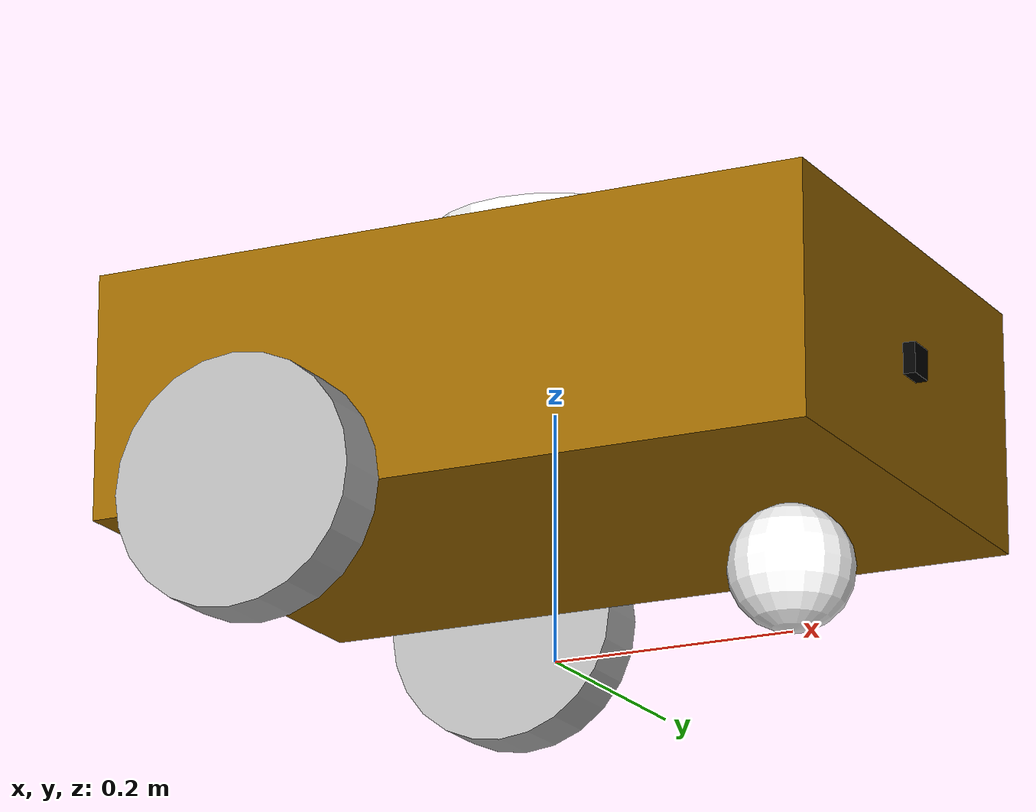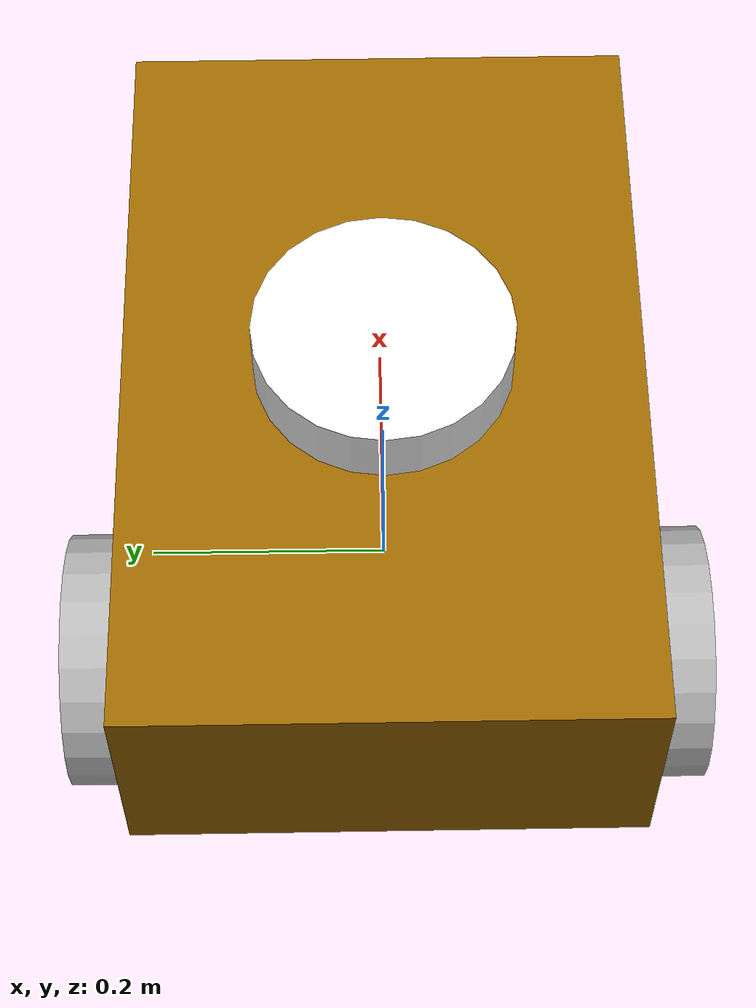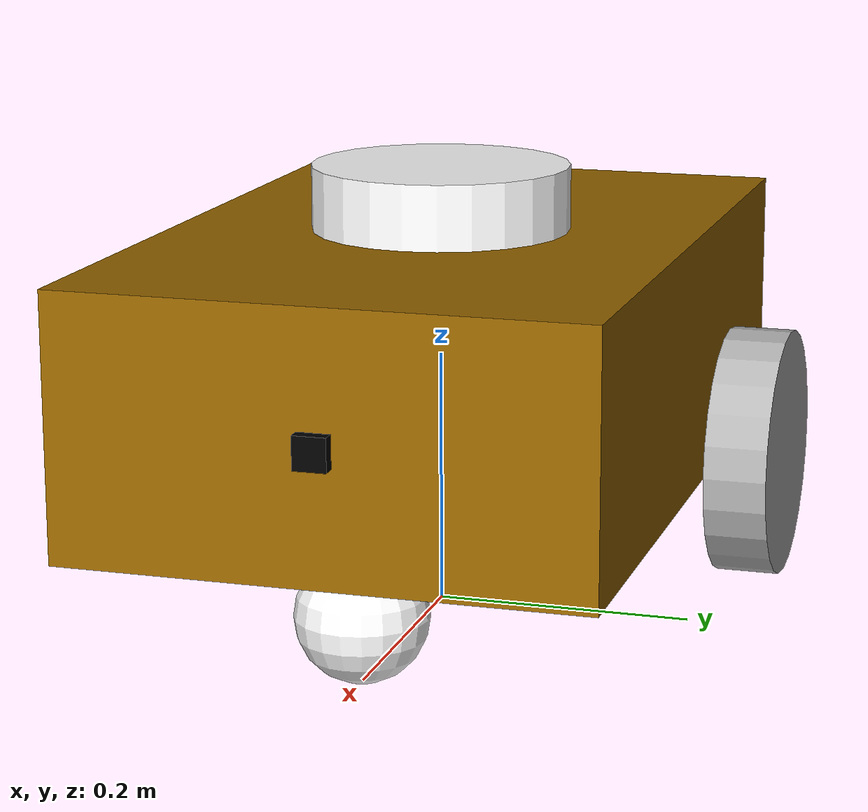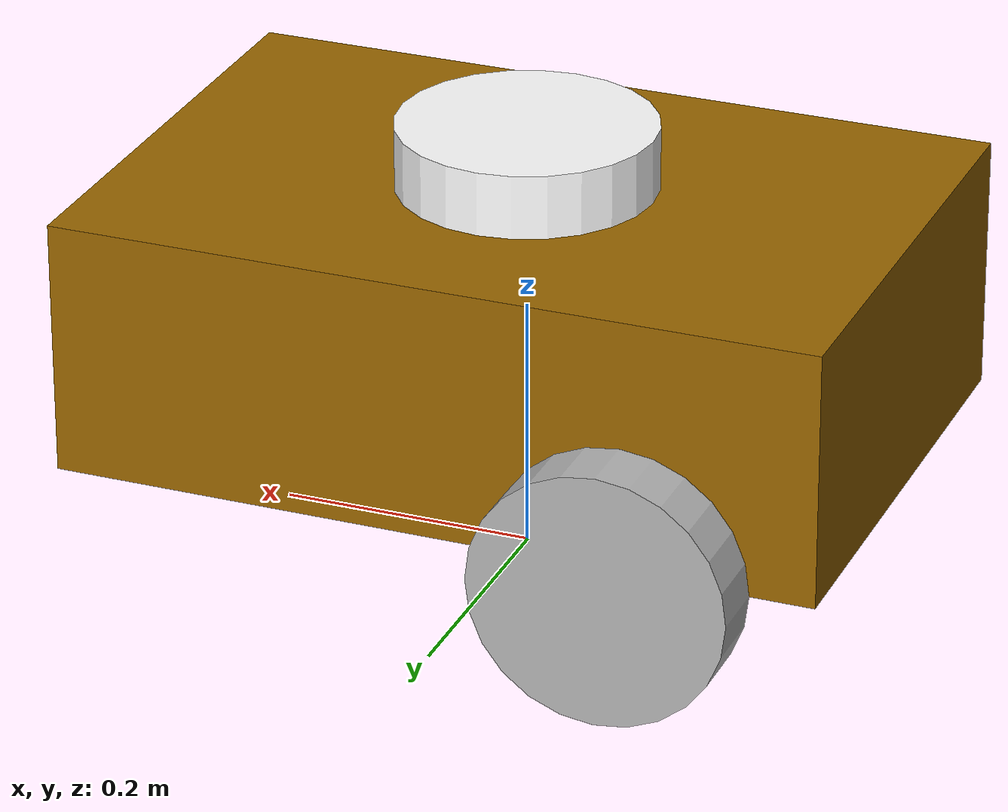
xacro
<?xml version="1.0"?>
<robot xmlns:xacro="http://www.ros.org/wiki/xacro">
<xacro:property name="width" value = "0.4"/>
<xacro:property name="length" value = "0.6"/>
<xacro:property name="height" value = "0.2"/>
<xacro:property name="wheel_radius" value = "0.1"/>
<xacro:property name="wheel_len" value = "0.05"/>
<xacro:property name = "caster" value = "0.05"/>

    <material name="orange">
        <color rgba="0.6 0.4 0 1"/>
    </material>

    <material name = "gray">
        <color rgba = "0.7 0.7 0.7 1"/>
    </material>

    <material name = "white">
        <color rgba="1 1 1 1"/>
    </material>

    <material name = "black">
        <color rgba = "0 0 0 1"/>
    </material>

    <link name = "base_link">
        <visual>
            <geometry>
                <box size = "${length} ${width} ${height}" />
            </geometry>
            <origin xyz = "0 0 ${2*wheel_radius}" rpy = "0 0 0"/>
            <material name= "orange"/>
        </visual>
        <collision>
            <geometry>
                <box size = "${length} ${width} ${height}" />
            </geometry>
            <origin xyz="0 0 ${2*wheel_radius}"/>
        </collision>
        <inertial>
            <mass value="5"/>
            <origin xyz="0 0 ${wheel_radius + height/2}" rpy = "0 0 0"/>
            <inertia ixx="0.083" ixy="0" ixz="0" iyy="0.11" iyz="0" izz="0.13"/>
        </inertial>
    </link>

    <link name = "left_wheel">
        <visual>
            <geometry>
                <cylinder radius = "${wheel_radius}" length = "${wheel_len}"/>
            </geometry>
            <origin xyz = "0 0 0" rpy = "1.57 0 0"/>
            <material name = "gray"/>
        </visual>
        <collision>
            <geometry>
                <cylinder radius = "${wheel_radius}" length = "${wheel_len}"/>
            </geometry>
            <origin xyz = "0 0 0" rpy = "1.57 0 0"/>
        </collision>
        <inertial>
            <mass value="0.5"/>
            <origin xyz="0 0 0" rpy = "0 0 0"/>
            <inertia ixx="0.0014" ixy="0" ixz="0" iyy="0.0014" iyz="0" izz="0.0025"/>
        </inertial>
    </link>
    <joint name = "left_wheel_joint" type = "continuous">
        <parent link = "base_link"/>
        <child link = "left_wheel"/>
        <origin xyz="-${length/4} ${width/2 + wheel_len/2} ${wheel_radius}"/>
        <axis xyz = "0 1 0"/>
    </joint>

    <link name = "right_wheel">
        <visual>
            <geometry>
                <cylinder radius = "${wheel_radius}" length = "${wheel_len}"/>
            </geometry>
            <origin xyz = "0 0 0" rpy = "1.57 0 0"/>
            <material name = "gray"/>
        </visual>
        <collision>
            <geometry>
                <cylinder radius = "${wheel_radius}" length = "${wheel_len}"/>
            </geometry>
            <origin xyz = "0 0 0" rpy = "1.57 0 0"/>
        </collision>
        <inertial>
            <mass value="0.5"/>
            <origin xyz="0 0 0" rpy = "0 0 0"/>
            <inertia ixx="0.0014" ixy="0" ixz="0" iyy="0.0014" iyz="0" izz="0.0025"/>
        </inertial>
    </link>
    <joint name = "right_wheel_joint" type = "continuous">
        <parent link = "base_link"/>
        <child link = "right_wheel"/>
        <origin xyz = "-${length/4} -${width/2 + wheel_len/2} ${wheel_radius}"/>
        <axis xyz = "0 1 0"/>
    </joint>

    <link name = "caster_wheel">
        <visual>
            <geometry>
                <sphere radius = "${caster}"/>
            </geometry>
            <origin xyz = "0 0 0" rpy = "0 0 0"/>
            <material name = "white"/>
        </visual>
        <collision>
            <geometry>
                <sphere radius = "${caster}"/>
            </geometry>
            <origin xyz = "0 0 0" rpy = "0 0 0"/>
        </collision>
        <inertial>
            <mass value="0.2"/>
            <origin xyz="0 0 0" rpy = "0 0 0"/>
            <inertia ixx="0.001" ixy="0" ixz="0" iyy="0.001" iyz="0" izz="0.001"/>
        </inertial>
    </link>
    <joint name = "caster_wheel_joint" type = "fixed">
        <parent link = "base_link"/>
        <child link = "caster_wheel"/>
        <origin xyz = "0.2 0 ${wheel_radius/2}"/>
    </joint>

    <link name = "lidar">
        <visual>
            <geometry>
                <cylinder radius = "0.1" length = "0.05"/>
            </geometry>
            <origin xyz = "0 0 0" rpy = "0 0 0"/>
            <material name = "white"/>
        </visual>
        <collision>
            <geometry>
                <cylinder radius = "0.1" length = "0.05"/>
            </geometry>
            <origin xyz = "0 0 0" rpy = "0 0 0"/>
        </collision>
        <inertial>
            <mass value = "0.1"/>
            <origin xyz = "0 0 0" rpy = "0 0 0"/>
            <inertia ixx="0.0005" ixy="0" ixz="0" iyy="0.0005" iyz="0" izz="0.0005"/>
        </inertial>
    </link>
    <joint name = "lidar_joint" type = "fixed">
        <parent link = "base_link"/>
        <child link = "lidar"/>
        <origin xyz = "0 0 ${3*wheel_radius + 0.025}" rpy = "0 0 0"/>
    </joint>

    <link name="scan_link" />
    <joint name="scan_joint" type="fixed">
        <parent link="base_link"/>
        <child link="scan_link"/>
        <origin xyz="0.0 0 ${3*wheel_radius + 0.025}" rpy="0 0 0"/>
    </joint>

    <link name = "camera">
        <visual>
            <geometry>
                <box size = "0.01 0.025 0.025"/>
            </geometry>
            <origin xyz = "0 0 0" rpy = "0 0 0"/>
            <material name = "black"/>
        </visual>
        <collision>
            <geometry>
                <box size = "0.01 0.025 0.025"/>
            </geometry>
            <origin xyz = "0 0 0" rpy = "0 0 0"/>
        </collision>
        <inertial>
            <mass value = "0.01"/>
            <origin xyz = "0 0 0" rpy = "0 0 0"/>
            <inertia ixx="0.000217" ixy = "0" ixz = "0" iyy = "0.000417" iyz = "0" izz = "0.000217"/>
        </inertial>
    </link>
    <joint name = "camera_joint" type = "fixed">
        <parent link = "base_link"/>
        <child link = "camera"/>
        <origin xyz = "0.305 0 0.2" rpy = "0 0 0"/>
    </joint>

    <gazebo reference="base_link">
        <mu1>1</mu1>
        <mu2>1</mu2>
    </gazebo>

    <gazebo reference="left_wheel">
        <mu1>1</mu1>
        <mu2>1</mu2>
    </gazebo>

    <gazebo reference="right_wheel">
        <mu1>1</mu1>
        <mu2>1</mu2>
    </gazebo>

    <gazebo reference="caster_wheel">
        <mu1>0.000001</mu1>
        <mu2>0.000001</mu2>
    </gazebo>
</robot>
